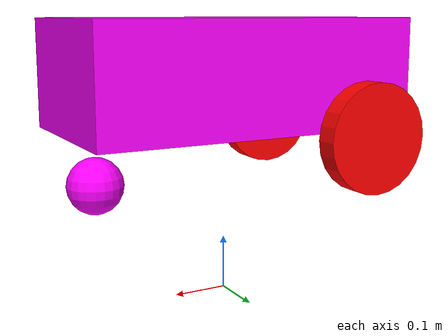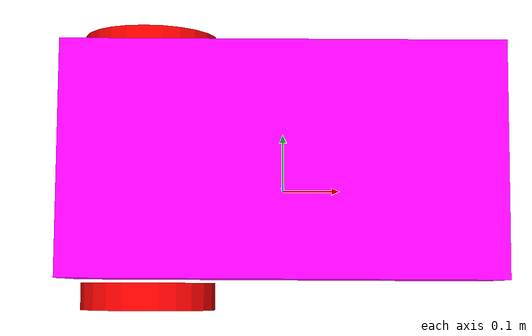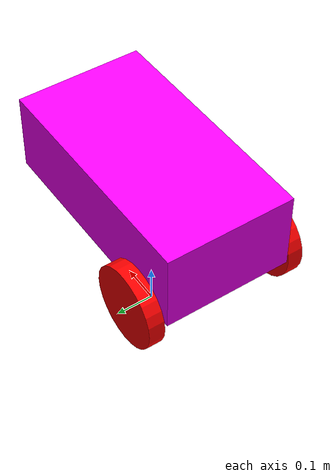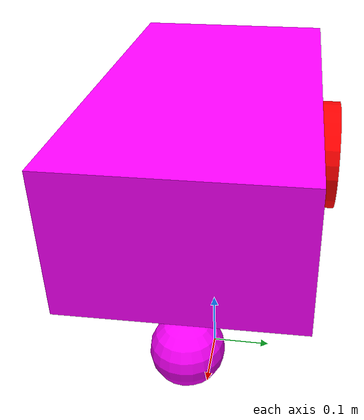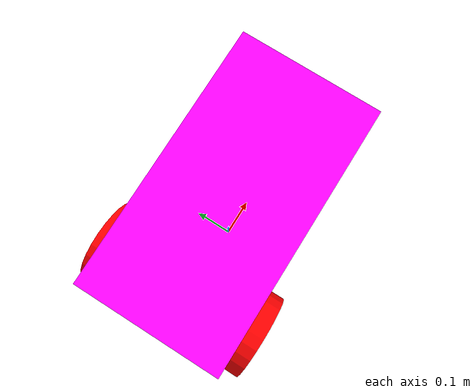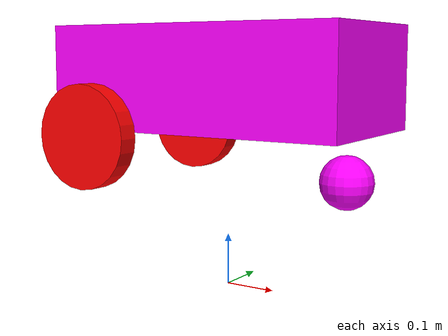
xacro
<?xml version="1.0"?>

<robot xmlns:xacro="https:/www.ros.org/wiki/xacro">
  <xacro:property name="base_length" value="0.6"/>
  <xacro:property name="base_width" value="0.32"/>
  <xacro:property name="base_height" value="0.2"/>
  <xacro:property name="wheel_radius" value="0.1"/>
  <xacro:property name="wheel_length" value="0.04"/>

  <link name="base_link">
    <visual>
      <origin xyz="0 0 0.21" rpy="0 0 0"/>
      <geometry>
        <box size="${base_length} ${base_width} ${base_height}"/>
      </geometry>
      <material name="blue">
        <color rgba="1 0 1 1"/>
      </material>
    </visual>
    <collision>
      <origin xyz="0 0 0.21" rpy="0 0 0"/>
      <geometry>
        <box size="${base_length} ${base_width} ${base_height}"/>
      </geometry>
    </collision>
    <inertial>
      <mass value="1.0"/>
      <origin xyz="0 0 0.21" rpy="0 0 0"/>
      <inertia ixx="0.1" ixy="0.0" ixz="0.0" iyy="0.1" iyz="0.0" izz="0.1"/>
    </inertial>

  </link>

    <link name="caster_wheel">
    <visual>
      <origin xyz="0 0 0" rpy="0 0 0"/>
      <geometry>
        <sphere radius="0.05"/>
      </geometry>
      <material name="grey">
        <color rgba="1 0 1 1"/>
      </material>
    </visual>
    <collision>
      <origin xyz="0 0 0" rpy="0 0 0"/>
      <geometry>
        <sphere radius="0.05"/>
      </geometry>
    </collision>
    <inertial>
      <mass value="1.0"/>
      <origin xyz="0 0 0" rpy="0 0 0"/>
      <inertia ixx="0.1" ixy="0.0" ixz="0.0" iyy="0.1" iyz="0.0" izz="0.1"/>
    </inertial>

  </link>

  <link name="base_footprint" />

  <xacro:macro name="wheel_link" params="prefix" >
    <link name="wheel_${prefix}">
      <visual>
        <origin xyz="0 0 0" rpy="${pi/2} 0 0"/>
        <geometry>
          <cylinder radius="${wheel_radius}" length="${wheel_length}"/>
        </geometry>
        <material name="red">
          <color rgba="1 0 0 1"/>
        </material>
      </visual>
      <collision>
        <origin xyz="0 0 0" rpy="${pi/2} 0 0"/>
        <geometry>
          <cylinder radius="${wheel_radius}" length="${wheel_length}"/>
        </geometry>
      </collision>
      <inertial>
        <mass value="0.1"/>
        <origin xyz="0 0 0" rpy="1.57 0 0"/>
        <inertia ixx="0.01" ixy="0.0" ixz="0.0" iyy="0.01" iyz="0.0" izz="0.01"/>
      </inertial>
    </link>
  </xacro:macro>
  <xacro:wheel_link prefix="rear_left" />
  <xacro:wheel_link prefix="rear_right" />

  <joint name="joint_rear_left" type="continuous">
    <parent link="base_link"/>
    <child link="wheel_rear_left"/>
    <origin xyz="${-base_length/3} ${(base_width/2)+(0.025)} ${wheel_radius}" rpy="0 0 0"/>
    <axis xyz="0 1 0"/>
  </joint>

  <joint name="joint_rear_right" type="continuous">
    <parent link="base_link"/>
    <child link="wheel_rear_right"/>
    <origin xyz="${-base_length/3} ${-((base_width/2)+(0.025))} ${wheel_radius}" rpy="0 0 0"/>
    <axis xyz="0 1 0"/>
  </joint>

  <joint name="joint_base_caster" type="fixed">
    <parent link="base_link"/>
    <child link="caster_wheel"/>
    <origin xyz="0.25 0 0.025" rpy="0 0 0"/>
    <axis xyz="0 1 0"/>
  </joint>

  <joint name="base_joint" type="fixed">
    <parent link="base_footprint"/>
    <child link="base_link" />
    <origin xyz="0 0 ${2*wheel_radius}" rpy="0 0 0" />
  </joint>

</robot>
